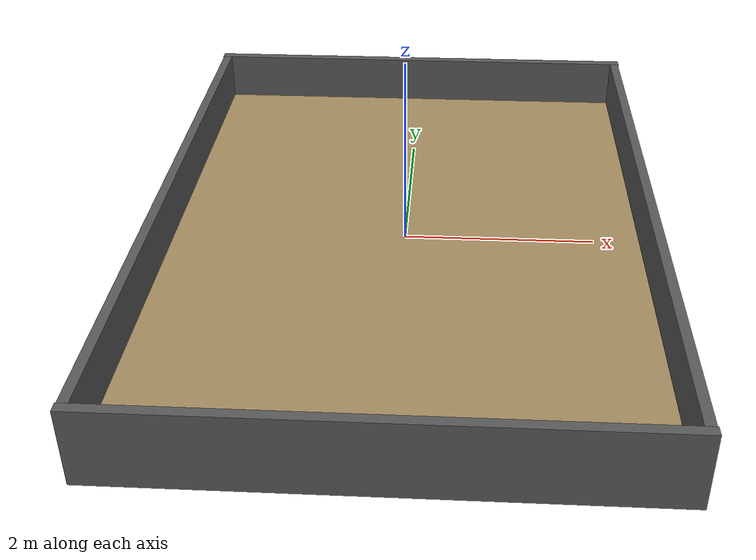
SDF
<sdf version="1.6">
 <world name="arena">
  <physics type="ode" name="default_physics">
   <max_step_size>0.001</max_step_size>
   <real_time_update_rate>1000</real_time_update_rate>
  </physics>
  <scene><ambient>0.7 0.7 0.7 1</ambient><background>0.5 0.6 0.7 1</background><shadows>true</shadows></scene>
  <include><uri>model://sun</uri></include>
  <model name="arena_floor">
   <static>true</static>
   <pose>0 0 -0.05 0 0 0</pose>
   <link name="floor">
    <collision name="collision"><geometry><box><size>5 6.88 0.1</size></box></geometry></collision>
    <visual name="visual">
     <geometry><box><size>5 6.88 0.1</size></box></geometry>
     <material><ambient>0.65 0.55 0.38 1</ambient><diffuse>0.65 0.55 0.38 1</diffuse></material>
    </visual>
   </link>
  </model>
  <model name="north_wall">
   <static>true</static>
   <pose>0 3.49 0.15 0 0 0</pose>
   <link name="wall">
    <collision name="collision"><geometry><box><size>5.2 0.1 0.8</size></box></geometry></collision>
    <visual name="visual">
     <geometry><box><size>5.2 0.1 0.8</size></box></geometry>
     <material><ambient>0.35 0.35 0.35 1</ambient><diffuse>0.35 0.35 0.35 1</diffuse></material>
    </visual>
   </link>
  </model>
  <model name="south_wall">
   <static>true</static>
   <pose>0 -3.49 0.15 0 0 0</pose>
   <link name="wall">
    <collision name="collision"><geometry><box><size>5.2 0.1 0.8</size></box></geometry></collision>
    <visual name="visual">
     <geometry><box><size>5.2 0.1 0.8</size></box></geometry>
     <material><ambient>0.35 0.35 0.35 1</ambient><diffuse>0.35 0.35 0.35 1</diffuse></material>
    </visual>
   </link>
  </model>
  <model name="east_wall">
   <static>true</static>
   <pose>2.54 0 0.15 0 0 0</pose>
   <link name="wall">
    <collision name="collision"><geometry><box><size>0.1 6.88 0.8</size></box></geometry></collision>
    <visual name="visual">
     <geometry><box><size>0.1 6.88 0.8</size></box></geometry>
     <material><ambient>0.35 0.35 0.35 1</ambient><diffuse>0.35 0.35 0.35 1</diffuse></material>
    </visual>
   </link>
  </model>
  <model name="west_wall">
   <static>true</static>
   <pose>-2.54 0 0.15 0 0 0</pose>
   <link name="wall">
    <collision name="collision"><geometry><box><size>0.1 6.88 0.8</size></box></geometry></collision>
    <visual name="visual">
     <geometry><box><size>0.1 6.88 0.8</size></box></geometry>
     <material><ambient>0.35 0.35 0.35 1</ambient><diffuse>0.35 0.35 0.35 1</diffuse></material>
    </visual>
   </link>
  </model>
 </world>
</sdf>
